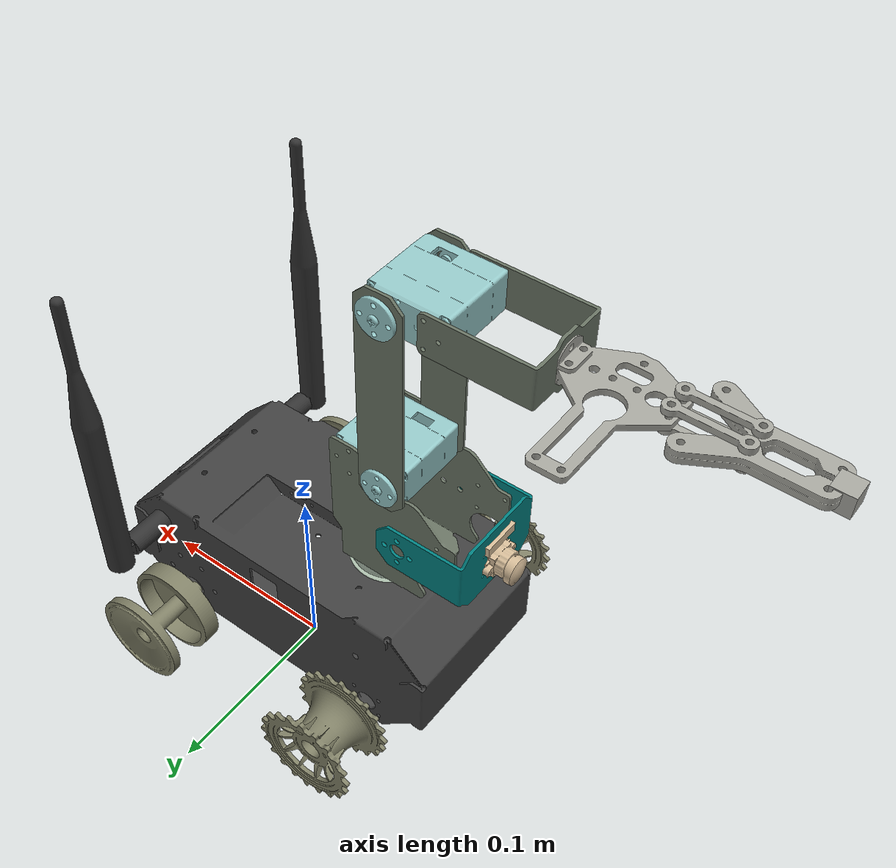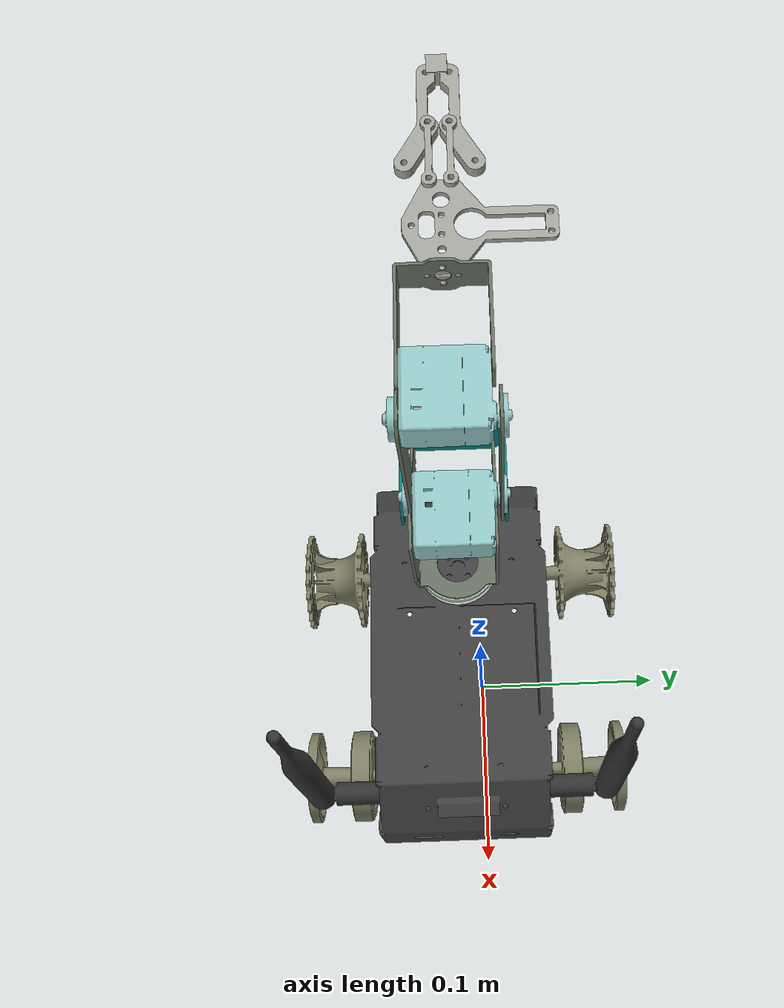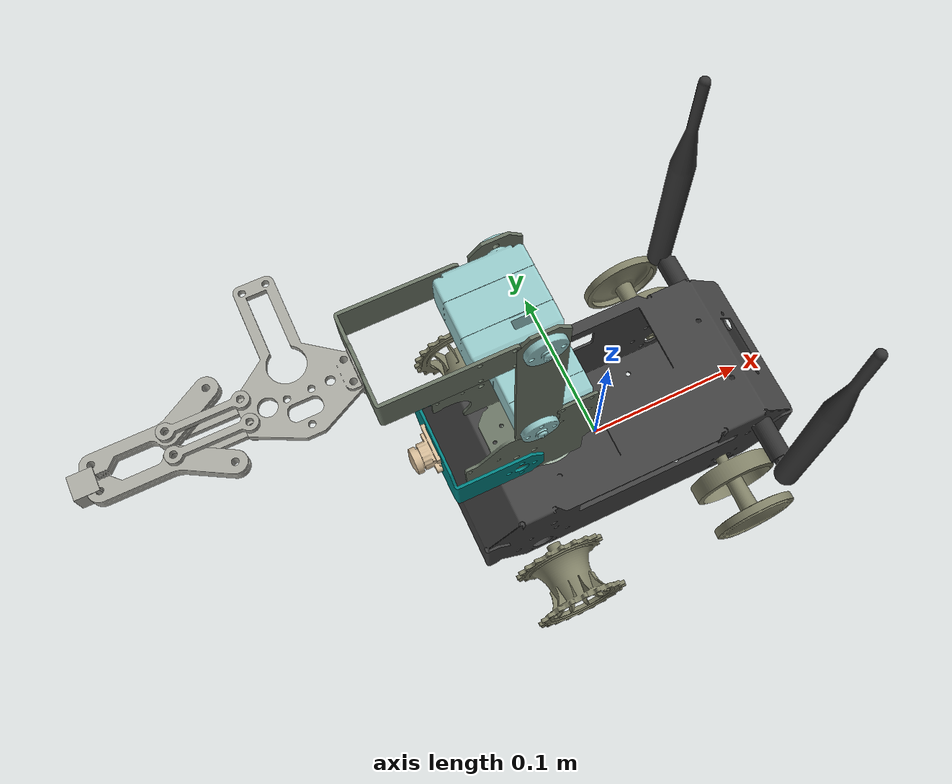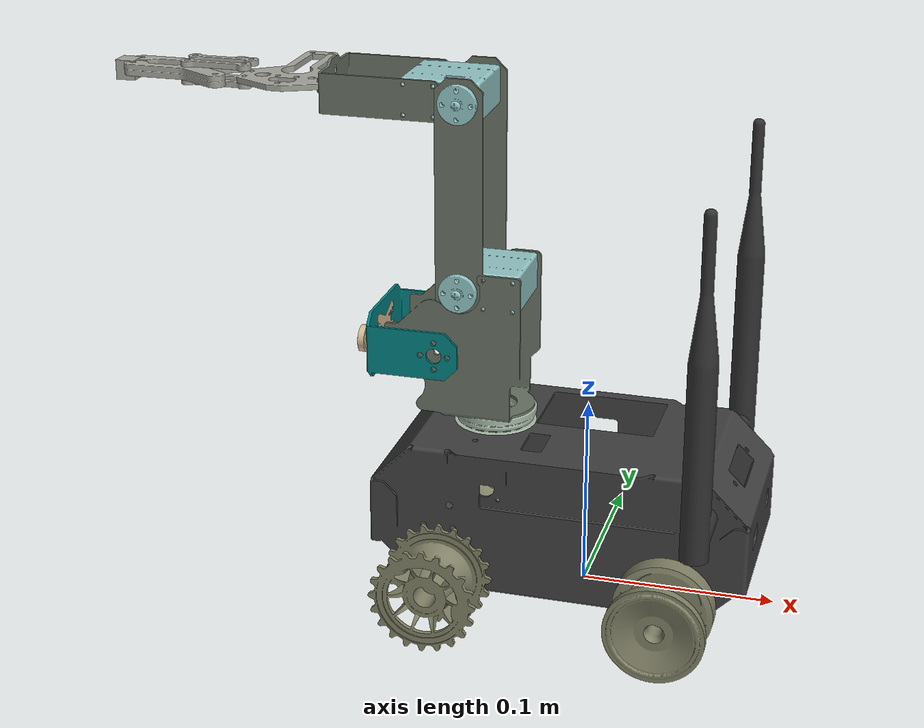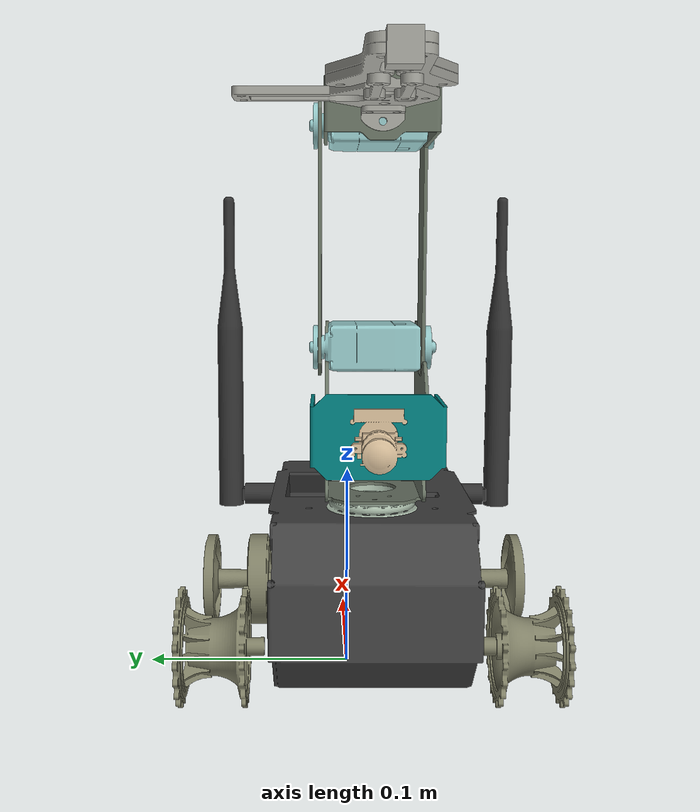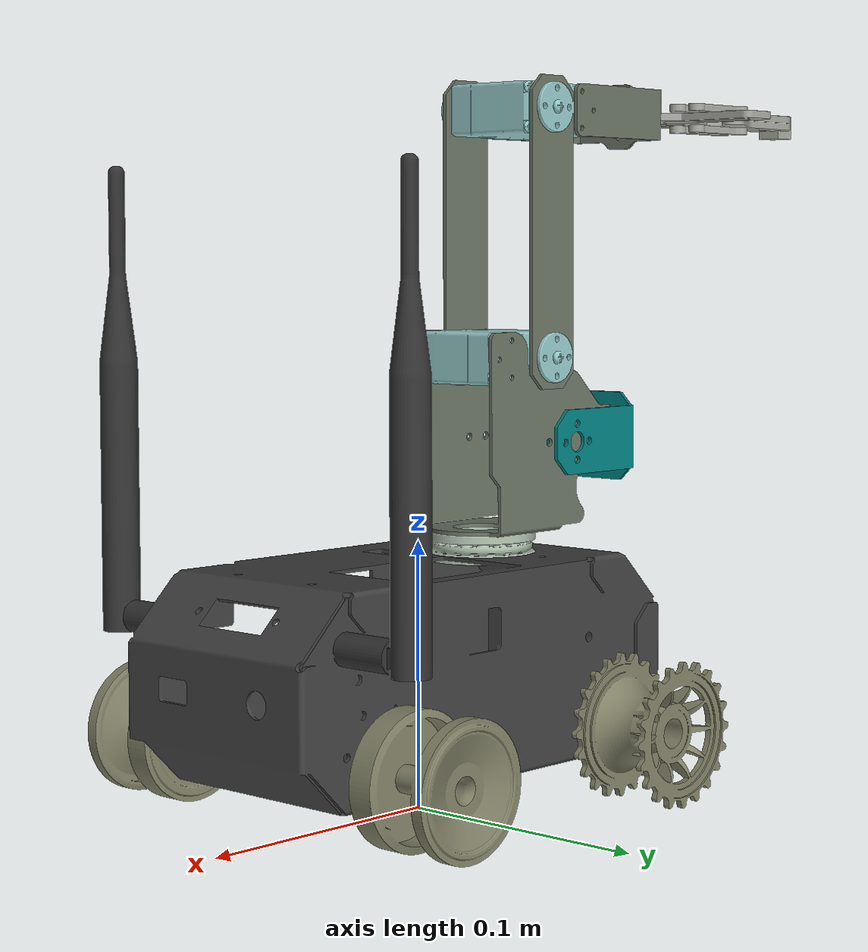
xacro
<?xml version="1.0" ?>
<robot name="JETANK" xmlns:xacro="http://www.ros.org/wiki/xacro">

<xacro:include filename="$(find JETANK_description)/urdf/materials.xacro" />
<xacro:include filename="$(find JETANK_description)/urdf/JETANK.trans" />
<xacro:include filename="$(find JETANK_description)/urdf/JETANK.gazebo" />

<!-- base_footprint: ground projection of the robot (mobile robot convention) -->
<link name="base_footprint"/>

<joint name="base_joint" type="fixed">
  <origin xyz="0 0 0.08" rpy="0 0 0"/>
  <parent link="base_footprint"/>
  <child link="base_link"/>
</joint>

<link name="base_link">
  <inertial>
    <origin xyz="-0.004435000283629018 -0.010243918252694353 -0.02819811925527743" rpy="0 0 0"/>
    <mass value="0.7639308708503839"/>
    <inertia ixx="0.001502" iyy="0.003532" izz="0.003808" ixy="9e-06" iyz="4e-06" ixz="5.1e-05"/>
  </inertial>
  <visual>
    <origin xyz="0 0 0" rpy="0 0 0"/>
    <geometry>
      <mesh filename="file://$(find JETANK_description)/meshes/base_link.stl" scale="0.001 0.001 0.001"/>
    </geometry>
    <material name="base_link_material"/>
  </visual>
  <collision>
    <origin xyz="0 0 0" rpy="0 0 0"/>
    <geometry>
      <mesh filename="file://$(find JETANK_description)/meshes/base_link.stl" scale="0.001 0.001 0.001"/>
    </geometry>
  </collision>
</link>

<link name="ANTENNA_L_1">
  <inertial>
    <origin xyz="-0.00010440589830879032 -0.028760958470267856 0.051254628121503915" rpy="0 0 0"/>
    <mass value="0.1712590340150529"/>
    <inertia ixx="0.000314" iyy="0.000306" izz="1.1e-05" ixy="-0.0" iyz="2.1e-05" ixz="0.0"/>
  </inertial>
  <visual>
    <origin xyz="-0.070085 0.055118 0.007934" rpy="0 0 0"/>
    <geometry>
      <mesh filename="file://$(find JETANK_description)/meshes/ANTENNA_L_1.stl" scale="0.001 0.001 0.001"/>
    </geometry>
    <material name="antenna_material"/>
  </visual>
  <collision>
    <origin xyz="-0.070085 0.055118 0.007934" rpy="0 0 0"/>
    <geometry>
      <mesh filename="file://$(find JETANK_description)/meshes/ANTENNA_L_1.stl" scale="0.001 0.001 0.001"/>
    </geometry>
  </collision>
</link>

<link name="BEARING_1">
  <inertial>
    <origin xyz="1.0562222860222015e-07 -5.036325476879752e-06 0.002529664311033245" rpy="0 0 0"/>
    <mass value="0.05589211207057761"/>
    <inertia ixx="9e-06" iyy="9e-06" izz="1.7e-05" ixy="0.0" iyz="-0.0" ixz="-0.0"/>
  </inertial>
  <visual>
    <origin xyz="0.046079 0.010536 -0.01116" rpy="0 0 0"/>
    <geometry>
      <mesh filename="file://$(find JETANK_description)/meshes/BEARING_1.stl" scale="0.001 0.001 0.001"/>
    </geometry>
    <material name="bearing_material"/>
  </visual>
  <collision>
    <origin xyz="0.046079 0.010536 -0.01116" rpy="0 0 0"/>
    <geometry>
      <mesh filename="file://$(find JETANK_description)/meshes/BEARING_1.stl" scale="0.001 0.001 0.001"/>
    </geometry>
  </collision>
</link>

<link name="ARM_LOWER_1">
  <inertial>
    <origin xyz="-0.01064714156754467 -5.4423566282478866e-05 0.029441657866703955" rpy="0 0 0"/>
    <mass value="0.1036438493797283"/>
    <inertia ixx="8.8e-05" iyy="8e-05" izz="7.2e-05" ixy="0.0" iyz="0.0" ixz="-2e-06"/>
  </inertial>
  <visual>
    <origin xyz="0.046079 0.010553 -0.01919" rpy="0 0 0"/>
    <geometry>
      <mesh filename="file://$(find JETANK_description)/meshes/ARM_LOWER_1.stl" scale="0.001 0.001 0.001"/>
    </geometry>
    <material name="arm_material"/>
  </visual>
  <collision>
    <origin xyz="0.046079 0.010553 -0.01919" rpy="0 0 0"/>
    <geometry>
      <mesh filename="file://$(find JETANK_description)/meshes/ARM_LOWER_1.stl" scale="0.001 0.001 0.001"/>
    </geometry>
  </collision>
</link>

<link name="FREE_WHEEL_L_1">
  <inertial>
    <origin xyz="-4.9004259322832366e-05 -0.013527120076589946 -2.851984933825019e-05" rpy="0 0 0"/>
    <mass value="0.11488889485414525"/>
    <inertia ixx="4.1e-05" iyy="4e-05" izz="4.1e-05" ixy="-0.0" iyz="-0.0" ixz="-0.0"/>
  </inertial>
  <visual>
    <origin xyz="-0.05431 0.034968 0.052234" rpy="0 0 0"/>
    <geometry>
      <mesh filename="file://$(find JETANK_description)/meshes/FREE_WHEEL_L_1.stl" scale="0.001 0.001 0.001"/>
    </geometry>
    <material name="wheel_material"/>
  </visual>
  <collision>
    <origin xyz="0 -0.01353 0" rpy="1.5707963 0 0"/>
    <geometry>
      <cylinder radius="0.02486" length="0.04476"/>
    </geometry>
  </collision>
</link>

<link name="FREE_WHEEL_R_1">
  <inertial>
    <origin xyz="4.918568823523983e-05 0.013527127364721205 2.805371253861849e-05" rpy="0 0 0"/>
    <mass value="0.11488889485415188"/>
    <inertia ixx="4.1e-05" iyy="4e-05" izz="4.1e-05" ixy="-0.0" iyz="-0.0" ixz="-0.0"/>
  </inertial>
  <visual>
    <origin xyz="-0.05431 -0.054968 0.052234" rpy="0 0 0"/>
    <geometry>
      <mesh filename="file://$(find JETANK_description)/meshes/FREE_WHEEL_L_1.stl" scale="0.001 -0.001 0.001"/>
    </geometry>
    <material name="wheel_material"/>
  </visual>
  <collision>
    <origin xyz="0 0.01353 0" rpy="1.5707963 0 0"/>
    <geometry>
      <cylinder radius="0.02486" length="0.04476"/>
    </geometry>
  </collision>
</link>

<link name="CAMERA_1">
  <inertial>
    <origin xyz="-0.005466883295410632 5.162118534754456e-06 -0.0028148521817242395" rpy="0 0 0"/>
    <mass value="0.01917709742595803"/>
    <inertia ixx="1e-06" iyy="1e-06" izz="1e-06" ixy="-0.0" iyz="-0.0" ixz="-0.0"/>
  </inertial>
  <visual>
    <origin xyz="0.104728 0.010412 -0.053571" rpy="0 0 0"/>
    <geometry>
      <mesh filename="file://$(find JETANK_description)/meshes/CAMERA_1.stl" scale="0.001 0.001 0.001"/>
    </geometry>
    <material name="camera_material"/>
  </visual>
  <collision>
    <origin xyz="0.104728 0.010412 -0.053571" rpy="0 0 0"/>
    <geometry>
      <mesh filename="file://$(find JETANK_description)/meshes/CAMERA_1.stl" scale="0.001 0.001 0.001"/>
    </geometry>
  </collision>
</link>

<link name="CAM_HOLDER_1">
  <inertial>
    <origin xyz="-0.02230975954219795 8.145119958027913e-05 1.5298627945650733e-06" rpy="0 0 0"/>
    <mass value="0.04320508566431304"/>
    <inertia ixx="2.6e-05" iyy="1.2e-05" izz="3.2e-05" ixy="-0.0" iyz="-0.0" ixz="0.0"/>
  </inertial>
  <visual>
    <origin xyz="0.070879 0.010535 -0.053571" rpy="0 0 0"/>
    <geometry>
      <mesh filename="file://$(find JETANK_description)/meshes/CAM_HOLDER_1.stl" scale="0.001 0.001 0.001"/>
    </geometry>
    <material name="camera_holder_material"/>
  </visual>
  <collision>
    <origin xyz="0.070879 0.010535 -0.053571" rpy="0 0 0"/>
    <geometry>
      <mesh filename="file://$(find JETANK_description)/meshes/CAM_HOLDER_1.stl" scale="0.001 0.001 0.001"/>
    </geometry>
  </collision>
</link>

<link name="GRIPPER_L1_1">
  <inertial>
    <origin xyz="-0.01499953892313019 4.862891752669459e-05 0.0029999309597343315" rpy="0 0 0"/>
    <mass value="0.0062442558314246485"/>
    <inertia ixx="1e-06" iyy="1e-06" izz="1e-06" ixy="0.0" iyz="0.0" ixz="0.0"/>
  </inertial>
  <visual>
    <origin xyz="0.174488 0.004873 -0.179831" rpy="0 0 0"/>
    <geometry>
      <mesh filename="file://$(find JETANK_description)/meshes/GRIPPER_L1_1.stl" scale="0.001 0.001 0.001"/>
    </geometry>
    <material name="gripper_material"/>
  </visual>
  <collision>
    <origin xyz="0.174488 0.004873 -0.179831" rpy="0 0 0"/>
    <geometry>
      <mesh filename="file://$(find JETANK_description)/meshes/GRIPPER_L1_1.stl" scale="0.001 0.001 0.001"/>
    </geometry>
  </collision>
</link>

<link name="GRIPPER_L2_1">
  <inertial>
    <origin xyz="-0.0024363716844204852 0.003974526639710773 0.003008312151974085" rpy="0 0 0"/>
    <mass value="0.02146027585992414"/>
    <inertia ixx="1e-06" iyy="6e-06" izz="6e-06" ixy="-1e-06" iyz="-0.0" ixz="-0.0"/>
  </inertial>
  <visual>
    <origin xyz="0.204487 0.004763 -0.179731" rpy="0 0 0"/>
    <geometry>
      <mesh filename="file://$(find JETANK_description)/meshes/GRIPPER_L2_1.stl" scale="0.001 0.001 0.001"/>
    </geometry>
    <material name="gripper_material"/>
  </visual>
  <collision>
    <origin xyz="0.204487 0.004763 -0.179731" rpy="0 0 0"/>
    <geometry>
      <mesh filename="file://$(find JETANK_description)/meshes/GRIPPER_L2_1.stl" scale="0.001 0.001 0.001"/>
    </geometry>
  </collision>
</link>

<link name="SERVO_UPPER_1">
  <inertial>
    <origin xyz="-0.009299858054830558 0.0009018947829658331 1.9142733671539958e-06" rpy="0 0 0"/>
    <mass value="0.2098216132647202"/>
    <inertia ixx="3.7e-05" iyy="3.5e-05" izz="5.8e-05" ixy="0.0" iyz="-0.0" ixz="0.0"/>
  </inertial>
  <visual>
    <origin xyz="0.059673 0.009093 -0.181342" rpy="0 0 0"/>
    <geometry>
      <mesh filename="file://$(find JETANK_description)/meshes/SERVO_UPPER_1.stl" scale="0.001 0.001 0.001"/>
    </geometry>
    <material name="servo_material"/>
  </visual>
  <collision>
    <origin xyz="0.059673 0.009093 -0.181342" rpy="0 0 0"/>
    <geometry>
      <mesh filename="file://$(find JETANK_description)/meshes/SERVO_UPPER_1.stl" scale="0.001 0.001 0.001"/>
    </geometry>
  </collision>
</link>

<link name="ARM_MIDDLE_2">
  <inertial>
    <origin xyz="9.48262388403287e-08 -9.963954604889219e-05 0.04750023738359482" rpy="0 0 0"/>
    <mass value="0.06186397464920469"/>
    <inertia ixx="9.6e-05" iyy="6.8e-05" izz="3.4e-05" ixy="-0.0" iyz="0.0" ixz="0.0"/>
  </inertial>
  <visual>
    <origin xyz="0.059673 0.008894 -0.086342" rpy="0 0 0"/>
    <geometry>
      <mesh filename="file://$(find JETANK_description)/meshes/ARM_MIDDLE_2.stl" scale="0.001 0.001 0.001"/>
    </geometry>
    <material name="arm_material"/>
  </visual>
  <collision>
    <origin xyz="0.059673 0.008894 -0.086342" rpy="0 0 0"/>
    <geometry>
      <mesh filename="file://$(find JETANK_description)/meshes/ARM_MIDDLE_2.stl" scale="0.001 0.001 0.001"/>
    </geometry>
  </collision>
</link>

<link name="SERVO_LOWER_1">
  <inertial>
    <origin xyz="-0.01778064329454669 -0.01751744641612735 -3.676811534183977e-05" rpy="0 0 0"/>
    <mass value="0.20982161326471968"/>
    <inertia ixx="3.7e-05" iyy="3.5e-05" izz="5.8e-05" ixy="-0.0" iyz="-0.0" ixz="-0.0"/>
  </inertial>
  <visual>
    <origin xyz="0.032586 -0.009458 -0.086381" rpy="0 0 0"/>
    <geometry>
      <mesh filename="file://$(find JETANK_description)/meshes/SERVO_LOWER_1.stl" scale="0.001 0.001 0.001"/>
    </geometry>
    <material name="servo_material"/>
  </visual>
  <collision>
    <origin xyz="0.032586 -0.009458 -0.086381" rpy="0 0 0"/>
    <geometry>
      <mesh filename="file://$(find JETANK_description)/meshes/SERVO_LOWER_1.stl" scale="0.001 0.001 0.001"/>
    </geometry>
  </collision>
</link>

<link name="DRIVER_WHEEL_R_2">
  <inertial>
    <origin xyz="6.935655254387829e-05 0.019022053226744773 2.9509046361002322e-05" rpy="0 0 0"/>
    <mass value="0.1049698213829899"/>
    <inertia ixx="2.3e-05" iyy="2.5e-05" izz="2.3e-05" ixy="0.0" iyz="-0.0" ixz="-0.0"/>
  </inertial>
  <visual>
    <origin xyz="0.064189 -0.054537 0.052234" rpy="0 0 0"/>
    <geometry>
      <mesh filename="file://$(find JETANK_description)/meshes/DRIVER_WHEEL_L_1.stl" scale="0.001 -0.001 0.001"/>
    </geometry>
    <material name="wheel_material"/>
  </visual>
  <collision>
    <origin xyz="0 0.01902 0" rpy="1.5707963 0 0"/>
    <geometry>
      <cylinder radius="0.02734" length="0.03903"/>
    </geometry>
  </collision>
</link>

<link name="DRIVER_WHEEL_L_1">
  <inertial>
    <origin xyz="-6.918869203477451e-05 -0.01902200130388708 -5.0233203182634134e-05" rpy="0 0 0"/>
    <mass value="0.10496982138298995"/>
    <inertia ixx="2.3e-05" iyy="2.5e-05" izz="2.3e-05" ixy="0.0" iyz="0.0" ixz="0.0"/>
  </inertial>
  <visual>
    <origin xyz="0.064189 0.034537 0.052234" rpy="0 0 0"/>
    <geometry>
      <mesh filename="file://$(find JETANK_description)/meshes/DRIVER_WHEEL_L_1.stl" scale="0.001 0.001 0.001"/>
    </geometry>
    <material name="wheel_material"/>
  </visual>
  <collision>
    <origin xyz="0 -0.01902 0" rpy="1.5707963 0 0"/>
    <geometry>
      <cylinder radius="0.02734" length="0.03903"/>
    </geometry>
  </collision>
</link>

<link name="GRIPPER_R2_1">
  <inertial>
    <origin xyz="-0.0024645590426079222 -0.003969188400402515 0.002991675751564754" rpy="0 0 0"/>
    <mass value="0.021460275859939086"/>
    <inertia ixx="1e-06" iyy="6e-06" izz="6e-06" ixy="1e-06" iyz="-0.0" ixz="0.0"/>
  </inertial>
  <visual>
    <origin xyz="0.204524 0.014764 -0.17981" rpy="0 0 0"/>
    <geometry>
      <mesh filename="file://$(find JETANK_description)/meshes/GRIPPER_R2_1.stl" scale="0.001 0.001 0.001"/>
    </geometry>
    <material name="gripper_material"/>
  </visual>
  <collision>
    <origin xyz="0.204524 0.014764 -0.17981" rpy="0 0 0"/>
    <geometry>
      <mesh filename="file://$(find JETANK_description)/meshes/GRIPPER_R2_1.stl" scale="0.001 0.001 0.001"/>
    </geometry>
  </collision>
</link>

<link name="GRIPPER_R1_1">
  <inertial>
    <origin xyz="-0.014999865534495699 4.7716893300363966e-05 0.002999957523558139" rpy="0 0 0"/>
    <mass value="0.006244255831424672"/>
    <inertia ixx="1e-06" iyy="1e-06" izz="1e-06" ixy="0.0" iyz="0.0" ixz="0.0"/>
  </inertial>
  <visual>
    <origin xyz="0.174524 0.014872 -0.17981" rpy="0 0 0"/>
    <geometry>
      <mesh filename="file://$(find JETANK_description)/meshes/GRIPPER_R1_1.stl" scale="0.001 0.001 0.001"/>
    </geometry>
    <material name="gripper_material"/>
  </visual>
  <collision>
    <origin xyz="0.174524 0.014872 -0.17981" rpy="0 0 0"/>
    <geometry>
      <mesh filename="file://$(find JETANK_description)/meshes/GRIPPER_R1_1.stl" scale="0.001 0.001 0.001"/>
    </geometry>
  </collision>
</link>

<link name="GRIPPER_BASE_1">
  <inertial>
    <origin xyz="-0.020109788867281597 0.007659580658851287 1.6272994072724645e-05" rpy="0 0 0"/>
    <mass value="0.03665503665870981"/>
    <inertia ixx="1.1e-05" iyy="7e-06" izz="1.8e-05" ixy="1e-06" iyz="-0.0" ixz="0.0"/>
  </inertial>
  <visual>
    <origin xyz="0.130006 0.010025 -0.18132" rpy="0 0 0"/>
    <geometry>
      <mesh filename="file://$(find JETANK_description)/meshes/GRIPPER_BASE_1.stl" scale="0.001 0.001 0.001"/>
    </geometry>
    <material name="gripper_material"/>
  </visual>
  <collision>
    <origin xyz="0.130006 0.010025 -0.18132" rpy="0 0 0"/>
    <geometry>
      <mesh filename="file://$(find JETANK_description)/meshes/GRIPPER_BASE_1.stl" scale="0.001 0.001 0.001"/>
    </geometry>
  </collision>
</link>

<link name="GRIPPER_CENTER_LINK">
  <inertial>
    <origin xyz="0 0 0" rpy="0 0 0"/>
    <mass value="0.001"/>
    <inertia ixx="1e-06" iyy="1e-06" izz="1e-06" ixy="0" iyz="0" ixz="0"/>
  </inertial>
  <visual>
    <origin xyz="0 0 0" rpy="0 0 0"/>
    <geometry>
      <box size="0.01 0.01 0.01"/>
    </geometry>
    <material name="gripper_material"/>
  </visual>
  <collision>
    <origin xyz="0 0 0" rpy="0 0 0"/>
    <geometry>
      <box size="0.01 0.01 0.01"/>
    </geometry>
  </collision>
</link>

<link name="ARM_UPPER_1">
  <inertial>
    <origin xyz="-0.02165050511784486 0.019299608691663982 -0.00747987474304726" rpy="0 0 0"/>
    <mass value="0.03565761396104929"/>
    <inertia ixx="1.4e-05" iyy="1.4e-05" izz="2.5e-05" ixy="1e-06" iyz="-0.0" ixz="0.0"/>
  </inertial>
  <visual>
    <origin xyz="0.08725 0.030359 -0.188797" rpy="0 0 0"/>
    <geometry>
      <mesh filename="file://$(find JETANK_description)/meshes/ARM_UPPER_1.stl" scale="0.001 0.001 0.001"/>
    </geometry>
    <material name="arm_material"/>
  </visual>
  <collision>
    <origin xyz="0.08725 0.030359 -0.188797" rpy="0 0 0"/>
    <geometry>
      <mesh filename="file://$(find JETANK_description)/meshes/ARM_UPPER_1.stl" scale="0.001 0.001 0.001"/>
    </geometry>
  </collision>
</link>

<link name="ANTENNA_R_2">
  <inertial>
    <origin xyz="0.00010389848904659993 0.02854581227192822 0.05137522349342476" rpy="0 0 0"/>
    <mass value="0.17125903401505282"/>
    <inertia ixx="0.000314" iyy="0.000307" izz="1.1e-05" ixy="-0.0" iyz="-2e-05" ixz="-0.0"/>
  </inertial>
  <visual>
    <origin xyz="-0.070406 -0.033281 0.007749" rpy="0 0 0"/>
    <geometry>
      <mesh filename="file://$(find JETANK_description)/meshes/ANTENNA_R_2.stl" scale="0.001 0.001 0.001"/>
    </geometry>
    <material name="antenna_material"/>
  </visual>
  <collision>
    <origin xyz="-0.070406 -0.033281 0.007749" rpy="0 0 0"/>
    <geometry>
      <mesh filename="file://$(find JETANK_description)/meshes/ANTENNA_R_2.stl" scale="0.001 0.001 0.001"/>
    </geometry>
  </collision>
</link>

<joint name="rigid_ANTENNA_L_BASE_JOINT" type="fixed">
  <origin xyz="0.070085 -0.055118 -0.007934" rpy="0 0 0"/>
  <parent link="base_link"/>
  <child link="ANTENNA_L_1"/>
</joint>

<joint name="rigid_BEARING_BASE_JOINT" type="fixed">
  <origin xyz="-0.046079 -0.010536 0.01116" rpy="0 0 0"/>
  <parent link="base_link"/>
  <child link="BEARING_1"/>
</joint>

<joint name="revolute_BEARING" type="revolute">
  <origin xyz="0.0 -1.7e-05 0.00803" rpy="0 0 0"/>
  <parent link="BEARING_1"/>
  <child link="ARM_LOWER_1"/>
  <axis xyz="-4e-06 -0.002097 0.999998"/>
  <limit upper="1.8" lower="-1.8" effort="2.0" velocity="6.5"/>
  <dynamics damping="2.0"/>
</joint>

<joint name="revolute_FREE_WHEEL_LEFT" type="continuous">
  <origin xyz="0.054 -0.043 -0.053" rpy="0 0 0"/>
  <parent link="base_link"/>
  <child link="FREE_WHEEL_L_1"/>
  <axis xyz="0 1 0"/>
  <dynamics damping="0.05" friction="0.02"/>
</joint>

<joint name="revolute_FREE_WHEEL_RIGHT" type="continuous">
  <origin xyz="0.054 0.043 -0.053" rpy="0 0 0"/>
  <parent link="base_link"/>
  <child link="FREE_WHEEL_R_1"/>
  <axis xyz="0 -1 0"/>
  <dynamics damping="0.05" friction="0.02"/>
</joint>

<joint name="rigid_CAMERA_CAMERA_HOLDER" type="fixed">
  <origin xyz="-0.033849 0.000123 0.0" rpy="0 0 0"/>
  <parent link="CAM_HOLDER_1"/>
  <child link="CAMERA_1"/>
</joint>

<joint name="revolute_CAMERA_HOLDER_ARM_LOWER" type="revolute">
  <origin xyz="-0.0248 1.8e-05 0.034381" rpy="0 0 0"/>
  <parent link="ARM_LOWER_1"/>
  <child link="CAM_HOLDER_1"/>
  <axis xyz="0 1 0"/>
  <limit upper="1.0" lower="-1.0" effort="2.0" velocity="6.5"/>
  <dynamics damping="1.0"/>
</joint>

<joint name="revolute_GRIPPER_L1" type="revolute">
  <origin xyz="-0.044482 0.005152 -0.001489" rpy="0 0 0"/>
  <parent link="GRIPPER_BASE_1"/>
  <child link="GRIPPER_L1_1"/>
  <axis xyz="-5e-06 -0.002097 0.999998"/>
  <limit upper="0.0" lower="-1.047198" effort="1.0" velocity="6.5"/>
  <dynamics damping="0.1"/>
</joint>

<joint name="revolute_GRIPPER_L2" type="revolute">
  <origin xyz="-0.029999 0.00011 -0.0001" rpy="0 0 0"/>
  <parent link="GRIPPER_L1_1"/>
  <child link="GRIPPER_L2_1"/>
  <axis xyz="5e-06 0.002097 -0.999998"/>
  <limit upper="0.0" lower="-1.047198" effort="1.0" velocity="6.5"/>
  <dynamics damping="0.1"/>
</joint>

<joint name="Revolute_SERVO_UPPER" type="revolute">
  <origin xyz="0.0 -0.000199 0.095" rpy="0 0 0"/>
  <parent link="ARM_MIDDLE_2"/>
  <child link="SERVO_UPPER_1"/>
  <axis xyz="-0.003633 -0.999991 -0.002097"/>
  <limit upper="1.0" lower="-1.548620" effort="2.0" velocity="6.5"/>
  <dynamics damping="2.0"/>
</joint>

<joint name="Revolute_SERVO_LOWER" type="revolute">
  <origin xyz="-0.027087 -0.018352 -3.9e-05" rpy="0 0 0"/>
  <parent link="SERVO_LOWER_1"/>
  <child link="ARM_MIDDLE_2"/>
  <axis xyz="-0.003633 -0.999991 -0.002097"/>
  <limit upper="1.574492" lower="-1.892348" effort="2.0" velocity="6.5"/>
  <dynamics damping="2.0"/>
</joint>

<joint name="Rigid_SERVO_LOWER_ARM_LOWER" type="fixed">
  <origin xyz="0.013493 0.020011 0.067191" rpy="0 0 0"/>
  <parent link="ARM_LOWER_1"/>
  <child link="SERVO_LOWER_1"/>
</joint>

<joint name="Revolute_DRIVING_WHEEL_R" type="continuous">
  <origin xyz="-0.060 0.043 -0.051" rpy="0 0 0"/>
  <parent link="base_link"/>
  <child link="DRIVER_WHEEL_R_2"/>
  <axis xyz="0 1 0"/>
  <limit effort="100" velocity="100"/>
  <dynamics damping="50.0" friction="5.0"/>
</joint>

<joint name="Revolute_DRIVING_WHEEL_L" type="continuous">
  <origin xyz="-0.060 -0.043 -0.051" rpy="0 0 0"/>
  <parent link="base_link"/>
  <child link="DRIVER_WHEEL_L_1"/>
  <axis xyz="0 1 0"/>
  <limit effort="100" velocity="100"/>
  <dynamics damping="50.0" friction="5.0"/>
</joint>

<joint name="Revolute_GRIPPER_R2" type="revolute">
  <origin xyz="-0.03 0.000108 0.0" rpy="0 0 0"/>
  <parent link="GRIPPER_R1_1"/>
  <child link="GRIPPER_R2_1"/>
  <axis xyz="-5e-06 -0.002097 0.999998"/>
  <limit upper="0.0" lower="-1.047198" effort="1.0" velocity="6.5"/>
  <dynamics damping="0.1"/>
</joint>

<joint name="Revolute_GRIPPER_R1" type="revolute">
  <origin xyz="-0.044518 -0.004847 -0.00151" rpy="0 0 0"/>
  <parent link="GRIPPER_BASE_1"/>
  <child link="GRIPPER_R1_1"/>
  <axis xyz="-5e-06 -0.002097 0.999998"/>
  <limit upper="1.047198" lower="0.0" effort="1.0" velocity="6.5"/>
  <dynamics damping="0.1"/>

</joint>

<joint name="rigid_GRIPPER_BASE_ARM_UPPER" type="fixed">
  <origin xyz="-0.042756 0.020334 -0.007477" rpy="0 0 0"/>
  <parent link="ARM_UPPER_1"/>
  <child link="GRIPPER_BASE_1"/>
</joint>

<joint name="GRIPPER_CENTER" type="fixed">
  <origin xyz="-0.108750 0 0" rpy="0 0 0"/>
  <parent link="GRIPPER_BASE_1"/>
  <child link="GRIPPER_CENTER_LINK"/>
</joint>

<joint name="rigid_UPPER_ARM_SERVO_UPPER" type="fixed">
  <origin xyz="-0.027577 -0.021266 0.007455" rpy="0 0 0"/>
  <parent link="SERVO_UPPER_1"/>
  <child link="ARM_UPPER_1"/>
</joint>

<joint name="rigid_ANTENNA_R_BASE_JOINT" type="fixed">
  <origin xyz="0.070406 0.033281 -0.007749" rpy="0 0 0"/>
  <parent link="base_link"/>
  <child link="ANTENNA_R_2"/>
</joint>

<!-- Camera optical frame (OpenCV convention: X-right, Y-down, Z-forward) -->
<link name="camera_optical_frame">
  <inertial>
    <origin xyz="0 0 0" rpy="0 0 0"/>
    <mass value="0.001"/>
    <inertia ixx="1e-06" iyy="1e-06" izz="1e-06" ixy="0" iyz="0" ixz="0"/>
  </inertial>
</link>

<joint name="camera_optical_joint" type="fixed">
  <origin xyz="0 0 0" rpy="-1.5707963 0 -1.5707963"/>
  <parent link="CAMERA_1"/>
  <child link="camera_optical_frame"/>
</joint>

<link name="CAMERA_SENSOR_FRAME">
  <inertial>
    <origin xyz="0 0 0" rpy="0 0 0"/>
    <mass value="0.001"/>
    <inertia ixx="1e-09" iyy="1e-09" izz="1e-09" ixy="0" iyz="0" ixz="0"/>
  </inertial>
</link>

<joint name="camera_sensor_offset_joint" type="fixed">
  <origin xyz="-0.02 0 0" rpy="0 0 0"/>
  <parent link="CAMERA_1"/>
  <child link="CAMERA_SENSOR_FRAME"/>
</joint>

</robot>

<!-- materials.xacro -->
<robot name="JETANK" xmlns:xacro="http://www.ros.org/wiki/xacro" >

<!-- Base materials from jetank_description -->
<material name="base_link_material">
  <color rgba="0.25 0.25 0.25 1"/>
</material>

<material name="arm_material">
  <color rgba="0.41 0.45 0.39 1"/>
</material>

<material name="wheel_material">
  <color rgba="0.5 0.5 0.4 1"/>
</material>

<material name="camera_material">
  <color rgba="0.84 0.74 0.60 1"/>
</material>

<material name="camera_holder_material">
  <color rgba="0.0 0.5 0.5 1"/>
</material>

<material name="antenna_material">
  <color rgba="0.2 0.2 0.2 1"/>
</material>

<material name="servo_material">
  <color rgba="0.58 0.78 0.78 1"/>
</material>

<material name="gripper_material">
  <color rgba="0.65 0.65 0.62 1"/>
</material>

<material name="bearing_material">
  <color rgba="0.67 0.74 0.67 1"/>
</material>

<!-- Keep original silver as fallback -->
<material name="silver">
  <color rgba="0.700 0.700 0.700 1.000"/>
</material>

</robot>

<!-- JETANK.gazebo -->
<robot name="JETANK" xmlns:xacro="http://www.ros.org/wiki/xacro" >

<xacro:property name="body_color" value="Gazebo/Silver" />

<gazebo>
  <!-- Ignition Gazebo: publish joint states -->
  <plugin filename="ignition-gazebo-joint-state-publisher-system"
          name="ignition::gazebo::systems::JointStatePublisher"/>

  <!-- Joint position controllers: Gazebo defaults (no custom PID/cmd limits) -->
  <plugin filename="ignition-gazebo-joint-position-controller-system"
          name="ignition::gazebo::systems::JointPositionController">
    <joint_name>revolute_BEARING</joint_name>
    <topic>/cmd/revolute_BEARING</topic>
    <p_gain>5.0</p_gain>
    <i_gain>0.0</i_gain>
    <d_gain>1.0</d_gain>
    <cmd_max>1.5</cmd_max>
    <cmd_min>-1.5</cmd_min>
  </plugin>
  <plugin filename="ignition-gazebo-joint-position-controller-system"
          name="ignition::gazebo::systems::JointPositionController">
    <joint_name>Revolute_SERVO_LOWER</joint_name>
    <topic>/cmd/Revolute_SERVO_LOWER</topic>
    <p_gain>5.0</p_gain>
    <i_gain>0.0</i_gain>
    <d_gain>1.0</d_gain>
    <cmd_max>1.5</cmd_max>
    <cmd_min>-1.5</cmd_min>
  </plugin>
  <plugin filename="ignition-gazebo-joint-position-controller-system"
          name="ignition::gazebo::systems::JointPositionController">
    <joint_name>Revolute_SERVO_UPPER</joint_name>
    <topic>/cmd/Revolute_SERVO_UPPER</topic>
    <p_gain>3.0</p_gain>
    <i_gain>0.0</i_gain>
    <d_gain>0.5</d_gain>
    <cmd_max>1.0</cmd_max>
    <cmd_min>-1.0</cmd_min>
  </plugin>
  <plugin filename="ignition-gazebo-joint-position-controller-system"
          name="ignition::gazebo::systems::JointPositionController">
    <joint_name>revolute_CAMERA_HOLDER_ARM_LOWER</joint_name>
    <topic>/cmd/revolute_CAMERA_HOLDER_ARM_LOWER</topic>
    <p_gain>2.0</p_gain>
    <i_gain>0.0</i_gain>
    <d_gain>0.3</d_gain>
    <cmd_max>0.5</cmd_max>
    <cmd_min>-0.5</cmd_min>
  </plugin>
  <plugin filename="ignition-gazebo-joint-position-controller-system"
          name="ignition::gazebo::systems::JointPositionController">
    <joint_name>revolute_GRIPPER_L1</joint_name>
    <topic>/cmd/revolute_GRIPPER_L1</topic>
    <p_gain>3.0</p_gain>
    <i_gain>0.0</i_gain>
    <d_gain>0.3</d_gain>
    <cmd_max>0.5</cmd_max>
    <cmd_min>-0.5</cmd_min>
  </plugin>
  <plugin filename="ignition-gazebo-joint-position-controller-system"
          name="ignition::gazebo::systems::JointPositionController">
    <joint_name>revolute_GRIPPER_L2</joint_name>
    <topic>/cmd/revolute_GRIPPER_L2</topic>
    <p_gain>3.0</p_gain>
    <i_gain>0.0</i_gain>
    <d_gain>0.3</d_gain>
    <cmd_max>0.5</cmd_max>
    <cmd_min>-0.5</cmd_min>
  </plugin>
  <plugin filename="ignition-gazebo-joint-position-controller-system"
          name="ignition::gazebo::systems::JointPositionController">
    <joint_name>Revolute_GRIPPER_R1</joint_name>
    <topic>/cmd/Revolute_GRIPPER_R1</topic>
    <p_gain>3.0</p_gain>
    <i_gain>0.0</i_gain>
    <d_gain>0.3</d_gain>
    <cmd_max>0.5</cmd_max>
    <cmd_min>-0.5</cmd_min>
  </plugin>
  <plugin filename="ignition-gazebo-joint-position-controller-system"
          name="ignition::gazebo::systems::JointPositionController">
    <joint_name>Revolute_GRIPPER_R2</joint_name>
    <topic>/cmd/Revolute_GRIPPER_R2</topic>
    <p_gain>3.0</p_gain>
    <i_gain>0.0</i_gain>
    <d_gain>0.3</d_gain>
    <cmd_max>0.5</cmd_max>
    <cmd_min>-0.5</cmd_min>
  </plugin>
  <!-- Free wheels: no position controller — they roll freely.
       Ground friction (mu=5.0) resists lateral sliding/yaw rotation. -->
  <plugin filename="ignition-gazebo-diff-drive-system"
          name="ignition::gazebo::systems::DiffDrive">
    <left_joint>Revolute_DRIVING_WHEEL_R</left_joint>
    <right_joint>Revolute_DRIVING_WHEEL_L</right_joint>
    <wheel_separation>0.1240</wheel_separation>
    <wheel_radius>0.0273</wheel_radius>
    <topic>/cmd_vel</topic>
    <max_linear_acceleration>2.0</max_linear_acceleration>
    <max_angular_acceleration>3.0</max_angular_acceleration>
  </plugin>
</gazebo>
<gazebo reference="base_link">
  <material>${body_color}</material>
  <mu1>0.2</mu1>
  <mu2>0.2</mu2>
  <self_collide>false</self_collide>
  <gravity>true</gravity>
</gazebo>

<gazebo reference="ANTENNA_L_1">
  <material>${body_color}</material>
  <mu1>0.2</mu1>
  <mu2>0.2</mu2>
  <self_collide>false</self_collide>
</gazebo>

<gazebo reference="BEARING_1">
  <material>${body_color}</material>
  <mu1>0.2</mu1>
  <mu2>0.2</mu2>
  <self_collide>false</self_collide>
</gazebo>

<gazebo reference="ARM_LOWER_1">
  <material>${body_color}</material>
  <mu1>0.2</mu1>
  <mu2>0.2</mu2>
  <self_collide>false</self_collide>
</gazebo>

<gazebo reference="FREE_WHEEL_L_1">
  <material>${body_color}</material>
  <mu1>0.3</mu1>
  <mu2>0.3</mu2>
  <self_collide>false</self_collide>
</gazebo>

<gazebo reference="FREE_WHEEL_R_1">
  <material>${body_color}</material>
  <mu1>0.3</mu1>
  <mu2>0.3</mu2>
  <self_collide>false</self_collide>
</gazebo>

<gazebo reference="CAMERA_1">
  <material>${body_color}</material>
  <mu1>0.2</mu1>
  <mu2>0.2</mu2>
  <self_collide>false</self_collide>

  <!-- RGB Camera Sensor: offset 20mm forward (-X) to clear CAMERA_1 housing mesh.
       180° yaw flip because CAMERA_1 +X points toward robot body. -->
  <sensor name="camera_sensor" type="camera">
    <pose>-0.02 0 0 0 0 3.14159</pose>
    <always_on>1</always_on>
    <update_rate>30</update_rate>
    <visualize>true</visualize>
    <ignition_frame_id>CAMERA_SENSOR_FRAME</ignition_frame_id>
    <camera name="jetank_camera">
      <horizontal_fov>1.2112</horizontal_fov>
      <image>
        <width>640</width>
        <height>480</height>
        <format>R8G8B8</format>
      </image>
      <clip>
        <near>0.01</near>
        <far>10.0</far>
      </clip>
    </camera>
    <topic>camera/image_raw</topic>
    <camera_info_topic>camera/camera_info</camera_info_topic>
  </sensor>

  <!-- Depth Camera Sensor: same 20mm offset as RGB to stay aligned.
       far clip reduced to 2.0m, anti-aliasing disabled for clean depth edges. -->
  <sensor name="depth_sensor" type="depth_camera">
    <pose>-0.02 0 0 0 0 3.14159</pose>
    <always_on>1</always_on>
    <update_rate>30</update_rate>
    <ignition_frame_id>CAMERA_SENSOR_FRAME</ignition_frame_id>
    <camera name="jetank_depth">
      <horizontal_fov>1.2112</horizontal_fov>
      <image>
        <width>640</width>
        <height>480</height>
        <format>R_FLOAT32</format>
        <anti_aliasing>0</anti_aliasing>
      </image>
      <clip>
        <near>0.01</near>
        <far>2.0</far>
      </clip>
    </camera>
    <topic>depth_camera/image_raw</topic>
  </sensor>

  <!-- Segmentation Camera Sensor (same 180° yaw flip) -->
  <sensor name="segmentation_sensor" type="segmentation">
    <pose>0 0 0 0 0 3.14159</pose>
    <always_on>1</always_on>
    <update_rate>10</update_rate>
    <camera name="jetank_segmentation">
      <horizontal_fov>1.2112</horizontal_fov>
      <image>
        <width>640</width>
        <height>480</height>
      </image>
      <clip>
        <near>0.01</near>
        <far>10.0</far>
      </clip>
    </camera>
    <topic>segmentation</topic>
  </sensor>
</gazebo>

<gazebo reference="CAM_HOLDER_1">
  <material>${body_color}</material>
  <mu1>0.2</mu1>
  <mu2>0.2</mu2>
  <self_collide>false</self_collide>
</gazebo>

<gazebo reference="GRIPPER_L1_1">
  <material>${body_color}</material>
  <mu1>0.2</mu1>
  <mu2>0.2</mu2>
  <self_collide>false</self_collide>
</gazebo>

<gazebo reference="GRIPPER_L2_1">
  <material>${body_color}</material>
  <mu1>0.2</mu1>
  <mu2>0.2</mu2>
  <self_collide>false</self_collide>
</gazebo>

<gazebo reference="SERVO_UPPER_1">
  <material>${body_color}</material>
  <mu1>0.2</mu1>
  <mu2>0.2</mu2>
  <self_collide>false</self_collide>
</gazebo>

<gazebo reference="ARM_MIDDLE_2">
  <material>${body_color}</material>
  <mu1>0.2</mu1>
  <mu2>0.2</mu2>
  <self_collide>false</self_collide>
</gazebo>

<gazebo reference="SERVO_LOWER_1">
  <material>${body_color}</material>
  <mu1>0.2</mu1>
  <mu2>0.2</mu2>
  <self_collide>false</self_collide>
</gazebo>

<gazebo reference="DRIVER_WHEEL_R_2">
  <material>${body_color}</material>
  <mu1>5.0</mu1>
  <mu2>5.0</mu2>
  <self_collide>false</self_collide>
</gazebo>

<gazebo reference="DRIVER_WHEEL_L_1">
  <material>${body_color}</material>
  <mu1>5.0</mu1>
  <mu2>5.0</mu2>
  <self_collide>false</self_collide>
</gazebo>

<gazebo reference="GRIPPER_R2_1">
  <material>${body_color}</material>
  <mu1>0.2</mu1>
  <mu2>0.2</mu2>
  <self_collide>false</self_collide>
</gazebo>

<gazebo reference="GRIPPER_R1_1">
  <material>${body_color}</material>
  <mu1>0.2</mu1>
  <mu2>0.2</mu2>
  <self_collide>false</self_collide>
</gazebo>

<gazebo reference="GRIPPER_BASE_1">
  <material>${body_color}</material>
  <mu1>0.2</mu1>
  <mu2>0.2</mu2>
  <self_collide>false</self_collide>
</gazebo>

<gazebo reference="GRIPPER_CENTER_LINK">
  <material>${body_color}</material>
  <mu1>0.2</mu1>
  <mu2>0.2</mu2>
  <self_collide>false</self_collide>
</gazebo>

<gazebo reference="ARM_UPPER_1">
  <material>${body_color}</material>
  <mu1>0.2</mu1>
  <mu2>0.2</mu2>
  <self_collide>false</self_collide>
</gazebo>

<gazebo reference="ANTENNA_R_2">
  <material>${body_color}</material>
  <mu1>0.2</mu1>
  <mu2>0.2</mu2>
  <self_collide>false</self_collide>
</gazebo>

</robot>
